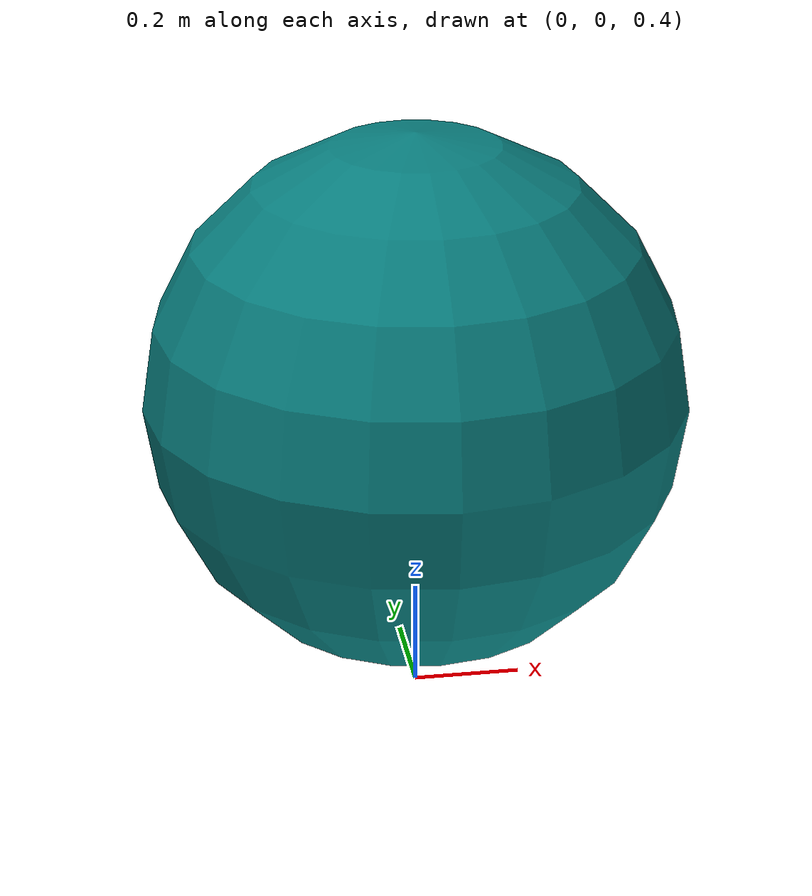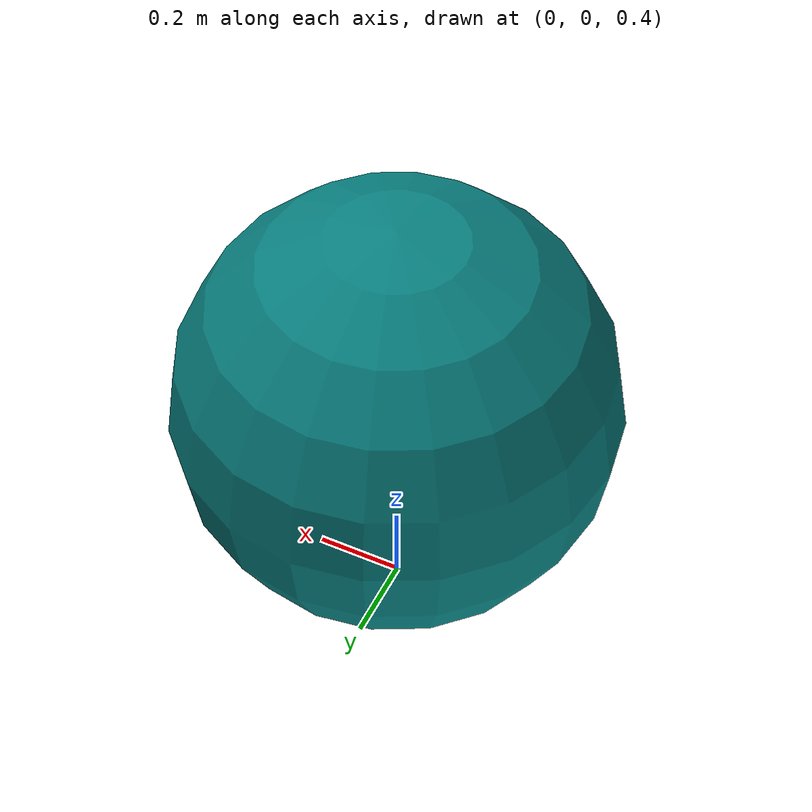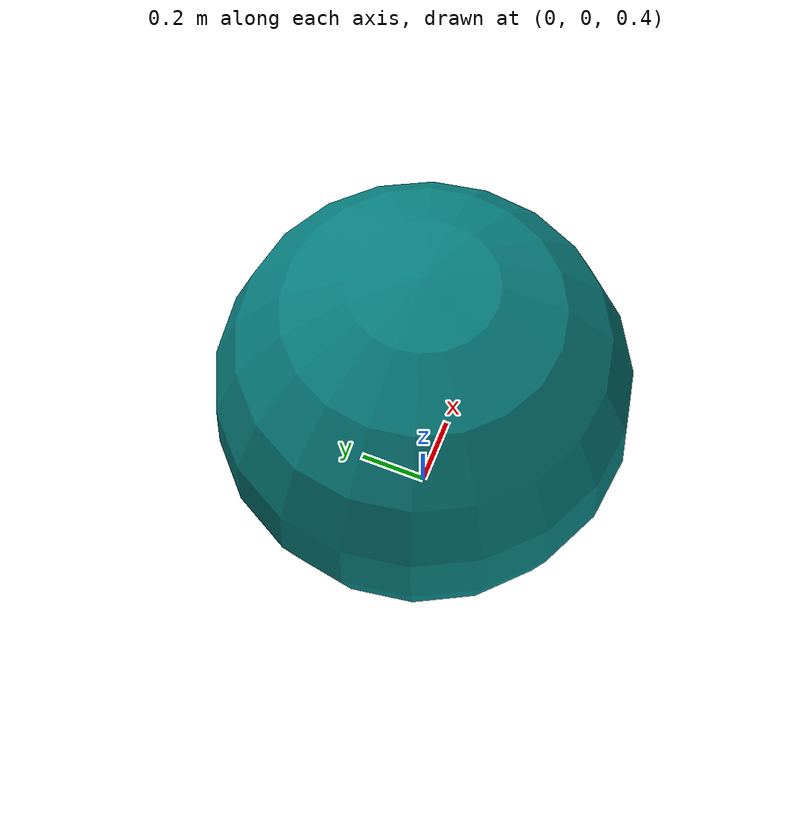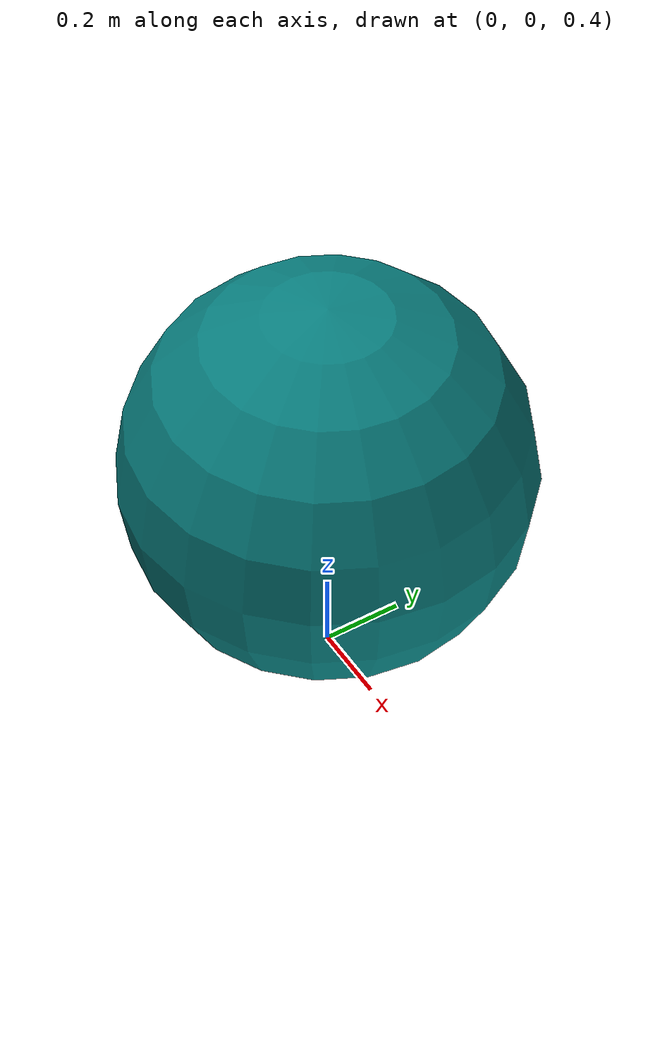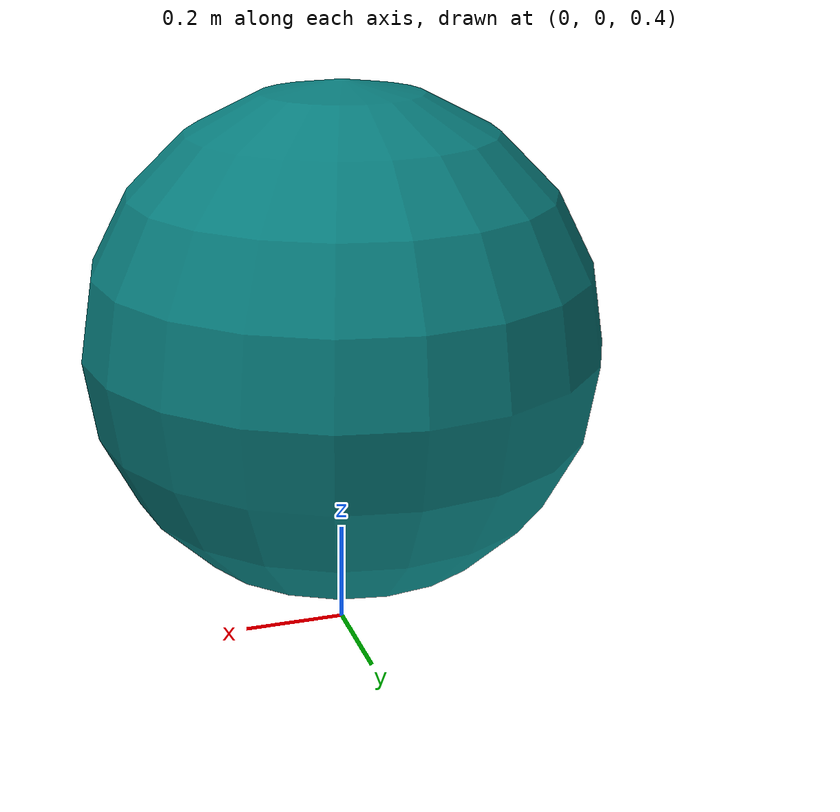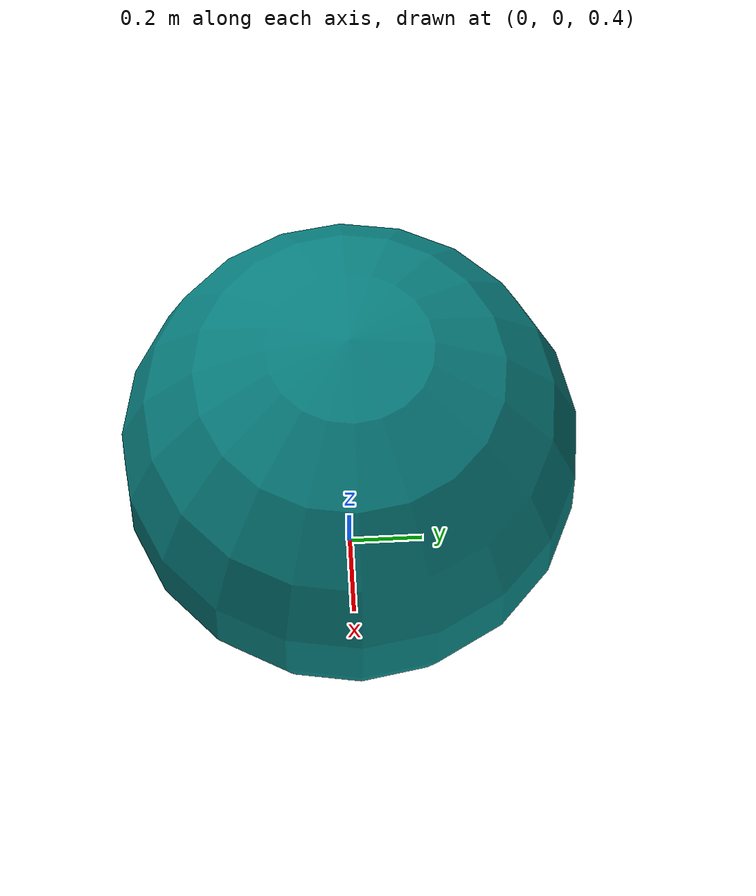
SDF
<sdf version="1.3">
    <world name="world_1">
        <scene>
            <ambient>0.5 0.5 0.5 1.0</ambient>
            <background>0.5 0.5 0.5 1.0</background>
            <shadows>true</shadows>
            <fog>
                <color>0.0 0.0 0.5 0.5</color>
                <type>linear</type>
                <start>2.0</start>
                <end>10.0</end>
                <density>0.5</density>
            </fog>
        </scene>
        <physics type="ode">
            <gravity>0.0 0.0 -9.81</gravity>
            <ode>
                <solver>
                    <type>quick</type>
                    <dt>0.001</dt>
                    <iters>20</iters>
                    <sor>1.3</sor>
                </solver>
                <constraints>
                    <cfm>0</cfm>
                    <erp>0.2</erp>
                    <contact_max_correcting_vel>100.0</contact_max_correcting_vel>
                    <contact_surface_layer>0.0</contact_surface_layer>
                </constraints>
            </ode>
            <max_contacts>250</max_contacts>
        </physics>
        <model name="model_1">
            <pose>0.0 0.0 1.0 0.0 0.0 0.0</pose>
            <link name="link_1">
                <pose>0.0 0.0 0.0 0.0 0.0 0.0</pose>
                <inertial>
                    <pose>0.0 0.0 0.0 0.0 0.0 0.0</pose>
                    <damping linear="0.0" angular="0.0" />
                    <inertia>
                        <ixx>1.0</ixx>
                        <ixy>0.0</ixy>
                        <ixz>0.0</ixz>
                        <iyy>1.0</iyy>
                        <iyz>0.0</iyz>
                        <izz>1.0</izz>
                    </inertia>
                    <mass>10.0</mass>
                </inertial>
                <visual name="visual_sphere">
                    <pose>0.0 0.0 0.0 0.0 0.0 0.0</pose>
                    <geometry>
                        <sphere>
                            <radius>0.5</radius>
                        </sphere>
                    </geometry>
                    <material>
                        <ambient>0.03 0.5 0.5 1.0</ambient>
                        <script>Gazebo/Green</script>
                    </material>
                    <cast_shadows>true</cast_shadows>
                    <laser_retro>100.0</laser_retro>
                </visual>
                <collision name="collision_sphere">
                    <pose>0.0 0.0 0.0 0.0 0.0 0.0</pose>
                    <max_contacts>250</max_contacts>
                    <geometry>
                        <sphere>
                            <radius>0.5</radius>
                        </sphere>
                    </geometry>
                    <surface>
                        <friction>
                            <ode>
                                <mu>0.5</mu>
                                <mu2>0.2</mu2>
                                <fdir1>1.0 0 0</fdir1>
                                <slip1>0</slip1>
                                <slip2>0</slip2>
                            </ode>
                        </friction>
                        <bounce>
                            <restitution_coefficient>0</restitution_coefficient>
                            <threshold>1000000.0</threshold>
                        </bounce>
                        <contact>
                            <ode>
                                <soft_cfm>0</soft_cfm>
                                <soft_erp>0.2</soft_erp>
                                <kp>1e15</kp>
                                <kd>1e13</kd>
                                <max_vel>100.0</max_vel>
                                <min_depth>0.0001</min_depth>
                            </ode>
                        </contact>
                    </surface>
                    <laser_retro>100.0</laser_retro>
                </collision>
                <sensor name="sensor_camera" type="camera">
                    <pose>0.0 0.0 0.0 0.0 0.0 0.0</pose>
                    <camera>
                        <horizontal_fov>1.57</horizontal_fov>
                        <image>
                            <width>2560</width>
                            <height>1600</height>
                            <format>BAYER_BGGR8</format>
                        </image>
                        <clip near="0.01" far="100.0" />
                        <save enabled="false" path="/tmp" />
                    </camera>
                    <plugin name="plugin_1" filename="libgazebo_ros_camera.so">
                        <alwaysOn>1</alwaysOn>
                        <updateRate>1.0</updateRate>
                        <imageTopicName>image_raw</imageTopicName>
                        <pointCloudTopicName>points</pointCloudTopicName>
                        <cameraInfoTopicName>camera_info</cameraInfoTopicName>
                        <frameName>world</frameName>
                        <pointCloudCutoff>0.5</pointCloudCutoff>
                        <distortion_k1>0.00000001</distortion_k1>
                        <distortion_k2>0.00000001</distortion_k2>
                        <distortion_k3>0.00000001</distortion_k3>
                        <distortion_t1>0.00000001</distortion_t1>
                        <distortion_t2>0.00000001</distortion_t2>
                    </plugin>
                    <always_on>true</always_on>
                    <update_rate>2.0</update_rate>
                </sensor>
                <gravity>false</gravity>
                <self_collide>true</self_collide>
                <kinematic>false</kinematic>
            </link>
            <static>false</static>
        </model>
        <light type="point" name="light_1">
            <pose>0.0 0.0 10.0 0.0 0.0 0.0</pose>
            <diffuse>0.5 0.5 0.5 0.5</diffuse>
            <attenuation>
                <range>1000.0</range>
                <constant>0.01</constant>
                <quadratic>0.0001</quadratic>
            </attenuation>
            <direction>0 0 -1</direction>
            <spot>
                <inner_angle>1.57</inner_angle>
                <outer_angle>1.57</outer_angle>
                <falloff>1.0</falloff>
            </spot>
            <cast_shadows>true</cast_shadows>
        </light>
    </world>
</sdf>
